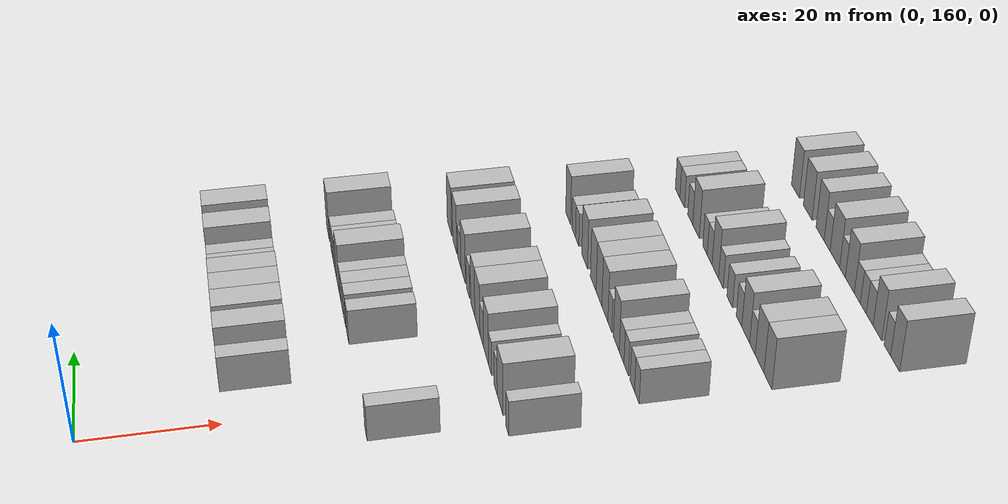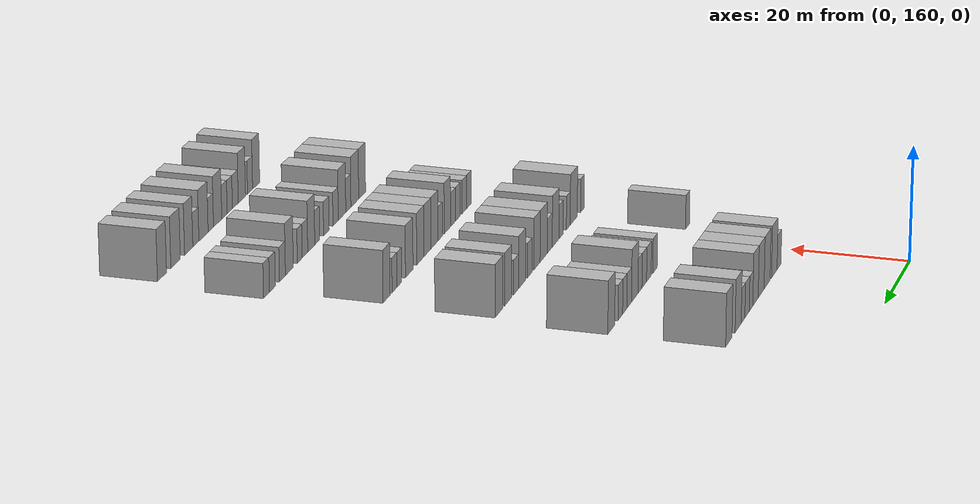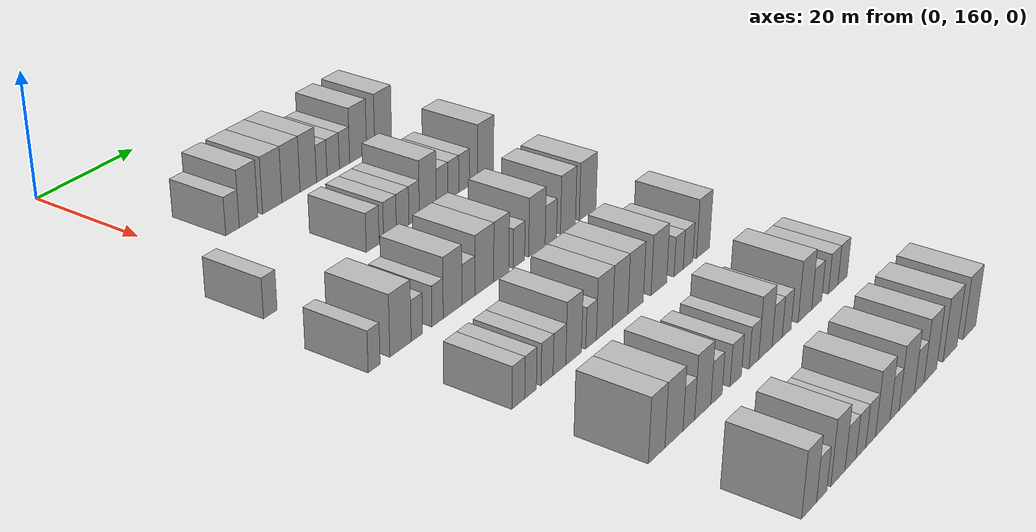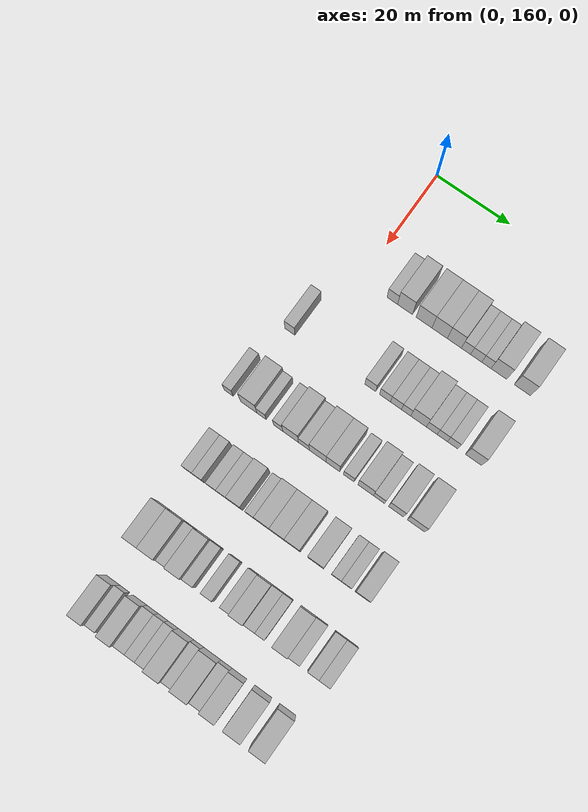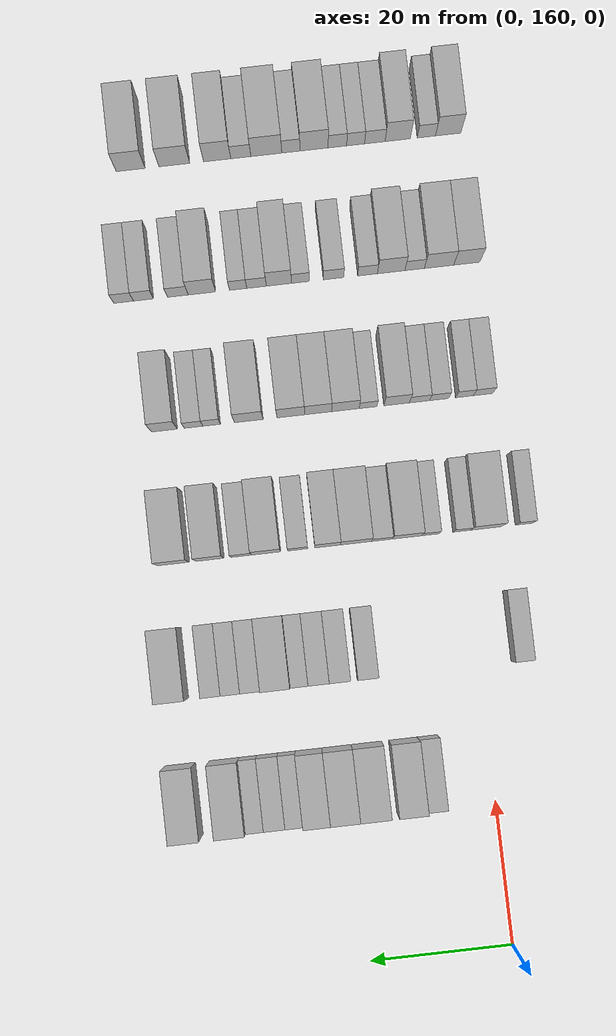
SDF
<sdf version="1.6">
 <world name="default">
  <model name="building_111">
   <static>1</static>
   <pose>25.0000 168.4954 0 0.000000 0.000000 0.000000</pose>
   <link name="link">
    <pose>0 0 3.00 0 0 0</pose>
    <collision name="collision"><geometry><box><size>10.0000 2.8664 6.0000</size></box></geometry></collision>
    <visual name="visual">
     <cast_shadows>0</cast_shadows>
     <geometry><box><size>10.0000 2.8664 6.0000</size></box></geometry>
     <material>
      <script>
       <uri>model://HANNAS_wall/materials/scripts</uri>
       <uri>model://HANNAS_wall/materials/textures</uri>
       <name>vrc/HANNAS_wall</name>
      </script>
     </material>
    </visual>
   </link>
  </model>
  <model name="building_112">
   <static>1</static>
   <pose>25.0000 171.9371 0 0.000000 0.000000 0.000000</pose>
   <link name="link">
    <pose>0 0 4.50 0 0 0</pose>
    <collision name="collision"><geometry><box><size>10.0000 4.0170 9.0000</size></box></geometry></collision>
    <visual name="visual">
     <cast_shadows>0</cast_shadows>
     <geometry><box><size>10.0000 4.0170 9.0000</size></box></geometry>
     <material>
      <script>
       <uri>model://HANNAS_wall/materials/scripts</uri>
       <uri>model://HANNAS_wall/materials/textures</uri>
       <name>vrc/HANNAS_wall</name>
      </script>
     </material>
    </visual>
   </link>
  </model>
  <model name="building_113">
   <static>1</static>
   <pose>25.0000 177.0812 0 0.000000 0.000000 0.000000</pose>
   <link name="link">
    <pose>0 0 4.50 0 0 0</pose>
    <collision name="collision"><geometry><box><size>10.0000 4.2713 9.0000</size></box></geometry></collision>
    <visual name="visual">
     <cast_shadows>0</cast_shadows>
     <geometry><box><size>10.0000 4.2713 9.0000</size></box></geometry>
     <material>
      <script>
       <uri>model://HANNAS_wall/materials/scripts</uri>
       <uri>model://HANNAS_wall/materials/textures</uri>
       <name>vrc/HANNAS_wall</name>
      </script>
     </material>
    </visual>
   </link>
  </model>
  <model name="building_114">
   <static>1</static>
   <pose>25.0000 181.2663 0 0.000000 0.000000 0.000000</pose>
   <link name="link">
    <pose>0 0 4.50 0 0 0</pose>
    <collision name="collision"><geometry><box><size>10.0000 4.0989 9.0000</size></box></geometry></collision>
    <visual name="visual">
     <cast_shadows>0</cast_shadows>
     <geometry><box><size>10.0000 4.0989 9.0000</size></box></geometry>
     <material>
      <script>
       <uri>model://HANNAS_wall/materials/scripts</uri>
       <uri>model://HANNAS_wall/materials/textures</uri>
       <name>vrc/HANNAS_wall</name>
      </script>
     </material>
    </visual>
   </link>
  </model>
  <model name="building_115">
   <static>1</static>
   <pose>25.0000 185.1970 0 0.000000 0.000000 0.000000</pose>
   <link name="link">
    <pose>0 0 4.50 0 0 0</pose>
    <collision name="collision"><geometry><box><size>10.0000 3.7625 9.0000</size></box></geometry></collision>
    <visual name="visual">
     <cast_shadows>0</cast_shadows>
     <geometry><box><size>10.0000 3.7625 9.0000</size></box></geometry>
     <material>
      <script>
       <uri>model://HANNAS_wall/materials/scripts</uri>
       <uri>model://HANNAS_wall/materials/textures</uri>
       <name>vrc/HANNAS_wall</name>
      </script>
     </material>
    </visual>
   </link>
  </model>
  <model name="building_116">
   <static>1</static>
   <pose>25.0000 188.3141 0 0.000000 0.000000 0.000000</pose>
   <link name="link">
    <pose>0 0 3.00 0 0 0</pose>
    <collision name="collision"><geometry><box><size>10.0000 2.4717 6.0000</size></box></geometry></collision>
    <visual name="visual">
     <cast_shadows>0</cast_shadows>
     <geometry><box><size>10.0000 2.4717 6.0000</size></box></geometry>
     <material>
      <script>
       <uri>model://HANNAS_wall/materials/scripts</uri>
       <uri>model://HANNAS_wall/materials/textures</uri>
       <name>vrc/HANNAS_wall</name>
      </script>
     </material>
    </visual>
   </link>
  </model>
  <model name="building_117">
   <static>1</static>
   <pose>25.0000 191.0302 0 0.000000 0.000000 0.000000</pose>
   <link name="link">
    <pose>0 0 3.00 0 0 0</pose>
    <collision name="collision"><geometry><box><size>10.0000 2.9605 6.0000</size></box></geometry></collision>
    <visual name="visual">
     <cast_shadows>0</cast_shadows>
     <geometry><box><size>10.0000 2.9605 6.0000</size></box></geometry>
     <material>
      <script>
       <uri>model://HANNAS_wall/materials/scripts</uri>
       <uri>model://HANNAS_wall/materials/textures</uri>
       <name>vrc/HANNAS_wall</name>
      </script>
     </material>
    </visual>
   </link>
  </model>
  <model name="building_118">
   <static>1</static>
   <pose>25.0000 193.7471 0 0.000000 0.000000 0.000000</pose>
   <link name="link">
    <pose>0 0 3.00 0 0 0</pose>
    <collision name="collision"><geometry><box><size>10.0000 2.4732 6.0000</size></box></geometry></collision>
    <visual name="visual">
     <cast_shadows>0</cast_shadows>
     <geometry><box><size>10.0000 2.4732 6.0000</size></box></geometry>
     <material>
      <script>
       <uri>model://HANNAS_wall/materials/scripts</uri>
       <uri>model://HANNAS_wall/materials/textures</uri>
       <name>vrc/HANNAS_wall</name>
      </script>
     </material>
    </visual>
   </link>
  </model>
  <model name="building_119">
   <static>1</static>
   <pose>25.0000 197.0703 0 0.000000 0.000000 0.000000</pose>
   <link name="link">
    <pose>0 0 4.50 0 0 0</pose>
    <collision name="collision"><geometry><box><size>10.0000 4.1732 9.0000</size></box></geometry></collision>
    <visual name="visual">
     <cast_shadows>0</cast_shadows>
     <geometry><box><size>10.0000 4.1732 9.0000</size></box></geometry>
     <material>
      <script>
       <uri>model://HANNAS_wall/materials/scripts</uri>
       <uri>model://HANNAS_wall/materials/textures</uri>
       <name>vrc/HANNAS_wall</name>
      </script>
     </material>
    </visual>
   </link>
  </model>
  <model name="building_120">
   <static>1</static>
   <pose>25.0000 203.2840 0 0.000000 0.000000 0.000000</pose>
   <link name="link">
    <pose>0 0 4.50 0 0 0</pose>
    <collision name="collision"><geometry><box><size>10.0000 4.2541 9.0000</size></box></geometry></collision>
    <visual name="visual">
     <cast_shadows>0</cast_shadows>
     <geometry><box><size>10.0000 4.2541 9.0000</size></box></geometry>
     <material>
      <script>
       <uri>model://HANNAS_wall/materials/scripts</uri>
       <uri>model://HANNAS_wall/materials/textures</uri>
       <name>vrc/HANNAS_wall</name>
      </script>
     </material>
    </visual>
   </link>
  </model>
  <model name="building_281">
   <static>1</static>
   <pose>44.0000 154.1554 0 0.000000 0.000000 0.000000</pose>
   <link name="link">
    <pose>0 0 3.00 0 0 0</pose>
    <collision name="collision"><geometry><box><size>10.0000 2.7231 6.0000</size></box></geometry></collision>
    <visual name="visual">
     <cast_shadows>0</cast_shadows>
     <geometry><box><size>10.0000 2.7231 6.0000</size></box></geometry>
     <material>
      <script>
       <uri>model://HANNAS_wall/materials/scripts</uri>
       <uri>model://HANNAS_wall/materials/textures</uri>
       <name>vrc/HANNAS_wall</name>
      </script>
     </material>
    </visual>
   </link>
  </model>
  <model name="building_282">
   <static>1</static>
   <pose>44.0000 175.8776 0 0.000000 0.000000 0.000000</pose>
   <link name="link">
    <pose>0 0 3.00 0 0 0</pose>
    <collision name="collision"><geometry><box><size>10.0000 2.9071 6.0000</size></box></geometry></collision>
    <visual name="visual">
     <cast_shadows>0</cast_shadows>
     <geometry><box><size>10.0000 2.9071 6.0000</size></box></geometry>
     <material>
      <script>
       <uri>model://HANNAS_wall/materials/scripts</uri>
       <uri>model://HANNAS_wall/materials/textures</uri>
       <name>vrc/HANNAS_wall</name>
      </script>
     </material>
    </visual>
   </link>
  </model>
  <model name="building_283">
   <static>1</static>
   <pose>44.0000 179.8139 0 0.000000 0.000000 0.000000</pose>
   <link name="link">
    <pose>0 0 3.00 0 0 0</pose>
    <collision name="collision"><geometry><box><size>10.0000 2.9655 6.0000</size></box></geometry></collision>
    <visual name="visual">
     <cast_shadows>0</cast_shadows>
     <geometry><box><size>10.0000 2.9655 6.0000</size></box></geometry>
     <material>
      <script>
       <uri>model://HANNAS_wall/materials/scripts</uri>
       <uri>model://HANNAS_wall/materials/textures</uri>
       <name>vrc/HANNAS_wall</name>
      </script>
     </material>
    </visual>
   </link>
  </model>
  <model name="building_284">
   <static>1</static>
   <pose>44.0000 182.7683 0 0.000000 0.000000 0.000000</pose>
   <link name="link">
    <pose>0 0 3.00 0 0 0</pose>
    <collision name="collision"><geometry><box><size>10.0000 2.9431 6.0000</size></box></geometry></collision>
    <visual name="visual">
     <cast_shadows>0</cast_shadows>
     <geometry><box><size>10.0000 2.9431 6.0000</size></box></geometry>
     <material>
      <script>
       <uri>model://HANNAS_wall/materials/scripts</uri>
       <uri>model://HANNAS_wall/materials/textures</uri>
       <name>vrc/HANNAS_wall</name>
      </script>
     </material>
    </visual>
   </link>
  </model>
  <model name="building_285">
   <static>1</static>
   <pose>44.0000 185.4722 0 0.000000 0.000000 0.000000</pose>
   <link name="link">
    <pose>0 0 3.00 0 0 0</pose>
    <collision name="collision"><geometry><box><size>10.0000 2.4646 6.0000</size></box></geometry></collision>
    <visual name="visual">
     <cast_shadows>0</cast_shadows>
     <geometry><box><size>10.0000 2.4646 6.0000</size></box></geometry>
     <material>
      <script>
       <uri>model://HANNAS_wall/materials/scripts</uri>
       <uri>model://HANNAS_wall/materials/textures</uri>
       <name>vrc/HANNAS_wall</name>
      </script>
     </material>
    </visual>
   </link>
  </model>
  <model name="building_286">
   <static>1</static>
   <pose>44.0000 188.7507 0 0.000000 0.000000 0.000000</pose>
   <link name="link">
    <pose>0 0 4.50 0 0 0</pose>
    <collision name="collision"><geometry><box><size>10.0000 4.0924 9.0000</size></box></geometry></collision>
    <visual name="visual">
     <cast_shadows>0</cast_shadows>
     <geometry><box><size>10.0000 4.0924 9.0000</size></box></geometry>
     <material>
      <script>
       <uri>model://HANNAS_wall/materials/scripts</uri>
       <uri>model://HANNAS_wall/materials/textures</uri>
       <name>vrc/HANNAS_wall</name>
      </script>
     </material>
    </visual>
   </link>
  </model>
  <model name="building_287">
   <static>1</static>
   <pose>44.0000 192.2342 0 0.000000 0.000000 0.000000</pose>
   <link name="link">
    <pose>0 0 3.00 0 0 0</pose>
    <collision name="collision"><geometry><box><size>10.0000 2.8747 6.0000</size></box></geometry></collision>
    <visual name="visual">
     <cast_shadows>0</cast_shadows>
     <geometry><box><size>10.0000 2.8747 6.0000</size></box></geometry>
     <material>
      <script>
       <uri>model://HANNAS_wall/materials/scripts</uri>
       <uri>model://HANNAS_wall/materials/textures</uri>
       <name>vrc/HANNAS_wall</name>
      </script>
     </material>
    </visual>
   </link>
  </model>
  <model name="building_288">
   <static>1</static>
   <pose>44.0000 195.0173 0 0.000000 0.000000 0.000000</pose>
   <link name="link">
    <pose>0 0 3.00 0 0 0</pose>
    <collision name="collision"><geometry><box><size>10.0000 2.6915 6.0000</size></box></geometry></collision>
    <visual name="visual">
     <cast_shadows>0</cast_shadows>
     <geometry><box><size>10.0000 2.6915 6.0000</size></box></geometry>
     <material>
      <script>
       <uri>model://HANNAS_wall/materials/scripts</uri>
       <uri>model://HANNAS_wall/materials/textures</uri>
       <name>vrc/HANNAS_wall</name>
      </script>
     </material>
    </visual>
   </link>
  </model>
  <model name="building_289">
   <static>1</static>
   <pose>44.0000 197.7573 0 0.000000 0.000000 0.000000</pose>
   <link name="link">
    <pose>0 0 3.00 0 0 0</pose>
    <collision name="collision"><geometry><box><size>10.0000 2.7883 6.0000</size></box></geometry></collision>
    <visual name="visual">
     <cast_shadows>0</cast_shadows>
     <geometry><box><size>10.0000 2.7883 6.0000</size></box></geometry>
     <material>
      <script>
       <uri>model://HANNAS_wall/materials/scripts</uri>
       <uri>model://HANNAS_wall/materials/textures</uri>
       <name>vrc/HANNAS_wall</name>
      </script>
     </material>
    </visual>
   </link>
  </model>
  <model name="building_290">
   <static>1</static>
   <pose>44.0000 203.2561 0 0.000000 0.000000 0.000000</pose>
   <link name="link">
    <pose>0 0 4.50 0 0 0</pose>
    <collision name="collision"><geometry><box><size>10.0000 4.2092 9.0000</size></box></geometry></collision>
    <visual name="visual">
     <cast_shadows>0</cast_shadows>
     <geometry><box><size>10.0000 4.2092 9.0000</size></box></geometry>
     <material>
      <script>
       <uri>model://HANNAS_wall/materials/scripts</uri>
       <uri>model://HANNAS_wall/materials/textures</uri>
       <name>vrc/HANNAS_wall</name>
      </script>
     </material>
    </visual>
   </link>
  </model>
  <model name="building_446">
   <static>1</static>
   <pose>63.0000 151.4069 0 0.000000 0.000000 0.000000</pose>
   <link name="link">
    <pose>0 0 3.00 0 0 0</pose>
    <collision name="collision"><geometry><box><size>10.0000 2.4189 6.0000</size></box></geometry></collision>
    <visual name="visual">
     <cast_shadows>0</cast_shadows>
     <geometry><box><size>10.0000 2.4189 6.0000</size></box></geometry>
     <material>
      <script>
       <uri>model://HANNAS_wall/materials/scripts</uri>
       <uri>model://HANNAS_wall/materials/textures</uri>
       <name>vrc/HANNAS_wall</name>
      </script>
     </material>
    </visual>
   </link>
  </model>
  <model name="building_447">
   <static>1</static>
   <pose>63.0000 156.8374 0 0.000000 0.000000 0.000000</pose>
   <link name="link">
    <pose>0 0 4.50 0 0 0</pose>
    <collision name="collision"><geometry><box><size>10.0000 4.4422 9.0000</size></box></geometry></collision>
    <visual name="visual">
     <cast_shadows>0</cast_shadows>
     <geometry><box><size>10.0000 4.4422 9.0000</size></box></geometry>
     <material>
      <script>
       <uri>model://HANNAS_wall/materials/scripts</uri>
       <uri>model://HANNAS_wall/materials/textures</uri>
       <name>vrc/HANNAS_wall</name>
      </script>
     </material>
    </visual>
   </link>
  </model>
  <model name="building_448">
   <static>1</static>
   <pose>63.0000 160.2838 0 0.000000 0.000000 0.000000</pose>
   <link name="link">
    <pose>0 0 3.00 0 0 0</pose>
    <collision name="collision"><geometry><box><size>10.0000 2.4506 6.0000</size></box></geometry></collision>
    <visual name="visual">
     <cast_shadows>0</cast_shadows>
     <geometry><box><size>10.0000 2.4506 6.0000</size></box></geometry>
     <material>
      <script>
       <uri>model://HANNAS_wall/materials/scripts</uri>
       <uri>model://HANNAS_wall/materials/textures</uri>
       <name>vrc/HANNAS_wall</name>
      </script>
     </material>
    </visual>
   </link>
  </model>
  <model name="building_449">
   <static>1</static>
   <pose>63.0000 164.7554 0 0.000000 0.000000 0.000000</pose>
   <link name="link">
    <pose>0 0 3.00 0 0 0</pose>
    <collision name="collision"><geometry><box><size>10.0000 2.4926 6.0000</size></box></geometry></collision>
    <visual name="visual">
     <cast_shadows>0</cast_shadows>
     <geometry><box><size>10.0000 2.4926 6.0000</size></box></geometry>
     <material>
      <script>
       <uri>model://HANNAS_wall/materials/scripts</uri>
       <uri>model://HANNAS_wall/materials/textures</uri>
       <name>vrc/HANNAS_wall</name>
      </script>
     </material>
    </visual>
   </link>
  </model>
  <model name="building_450">
   <static>1</static>
   <pose>63.0000 168.0867 0 0.000000 0.000000 0.000000</pose>
   <link name="link">
    <pose>0 0 4.50 0 0 0</pose>
    <collision name="collision"><geometry><box><size>10.0000 4.1700 9.0000</size></box></geometry></collision>
    <visual name="visual">
     <cast_shadows>0</cast_shadows>
     <geometry><box><size>10.0000 4.1700 9.0000</size></box></geometry>
     <material>
      <script>
       <uri>model://HANNAS_wall/materials/scripts</uri>
       <uri>model://HANNAS_wall/materials/textures</uri>
       <name>vrc/HANNAS_wall</name>
      </script>
     </material>
    </visual>
   </link>
  </model>
  <model name="building_451">
   <static>1</static>
   <pose>63.0000 171.6398 0 0.000000 0.000000 0.000000</pose>
   <link name="link">
    <pose>0 0 3.00 0 0 0</pose>
    <collision name="collision"><geometry><box><size>10.0000 2.9362 6.0000</size></box></geometry></collision>
    <visual name="visual">
     <cast_shadows>0</cast_shadows>
     <geometry><box><size>10.0000 2.9362 6.0000</size></box></geometry>
     <material>
      <script>
       <uri>model://HANNAS_wall/materials/scripts</uri>
       <uri>model://HANNAS_wall/materials/textures</uri>
       <name>vrc/HANNAS_wall</name>
      </script>
     </material>
    </visual>
   </link>
  </model>
  <model name="building_452">
   <static>1</static>
   <pose>63.0000 175.3131 0 0.000000 0.000000 0.000000</pose>
   <link name="link">
    <pose>0 0 4.50 0 0 0</pose>
    <collision name="collision"><geometry><box><size>10.0000 4.4104 9.0000</size></box></geometry></collision>
    <visual name="visual">
     <cast_shadows>0</cast_shadows>
     <geometry><box><size>10.0000 4.4104 9.0000</size></box></geometry>
     <material>
      <script>
       <uri>model://HANNAS_wall/materials/scripts</uri>
       <uri>model://HANNAS_wall/materials/textures</uri>
       <name>vrc/HANNAS_wall</name>
      </script>
     </material>
    </visual>
   </link>
  </model>
  <model name="building_453">
   <static>1</static>
   <pose>63.0000 179.3372 0 0.000000 0.000000 0.000000</pose>
   <link name="link">
    <pose>0 0 4.50 0 0 0</pose>
    <collision name="collision"><geometry><box><size>10.0000 3.6378 9.0000</size></box></geometry></collision>
    <visual name="visual">
     <cast_shadows>0</cast_shadows>
     <geometry><box><size>10.0000 3.6378 9.0000</size></box></geometry>
     <material>
      <script>
       <uri>model://HANNAS_wall/materials/scripts</uri>
       <uri>model://HANNAS_wall/materials/textures</uri>
       <name>vrc/HANNAS_wall</name>
      </script>
     </material>
    </visual>
   </link>
  </model>
  <model name="building_454">
   <static>1</static>
   <pose>63.0000 183.5707 0 0.000000 0.000000 0.000000</pose>
   <link name="link">
    <pose>0 0 3.00 0 0 0</pose>
    <collision name="collision"><geometry><box><size>10.0000 2.8292 6.0000</size></box></geometry></collision>
    <visual name="visual">
     <cast_shadows>0</cast_shadows>
     <geometry><box><size>10.0000 2.8292 6.0000</size></box></geometry>
     <material>
      <script>
       <uri>model://HANNAS_wall/materials/scripts</uri>
       <uri>model://HANNAS_wall/materials/textures</uri>
       <name>vrc/HANNAS_wall</name>
      </script>
     </material>
    </visual>
   </link>
  </model>
  <model name="building_455">
   <static>1</static>
   <pose>63.0000 188.0411 0 0.000000 0.000000 0.000000</pose>
   <link name="link">
    <pose>0 0 4.50 0 0 0</pose>
    <collision name="collision"><geometry><box><size>10.0000 4.1114 9.0000</size></box></geometry></collision>
    <visual name="visual">
     <cast_shadows>0</cast_shadows>
     <geometry><box><size>10.0000 4.1114 9.0000</size></box></geometry>
     <material>
      <script>
       <uri>model://HANNAS_wall/materials/scripts</uri>
       <uri>model://HANNAS_wall/materials/textures</uri>
       <name>vrc/HANNAS_wall</name>
      </script>
     </material>
    </visual>
   </link>
  </model>
  <model name="building_456">
   <static>1</static>
   <pose>63.0000 191.5636 0 0.000000 0.000000 0.000000</pose>
   <link name="link">
    <pose>0 0 3.00 0 0 0</pose>
    <collision name="collision"><geometry><box><size>10.0000 2.9335 6.0000</size></box></geometry></collision>
    <visual name="visual">
     <cast_shadows>0</cast_shadows>
     <geometry><box><size>10.0000 2.9335 6.0000</size></box></geometry>
     <material>
      <script>
       <uri>model://HANNAS_wall/materials/scripts</uri>
       <uri>model://HANNAS_wall/materials/textures</uri>
       <name>vrc/HANNAS_wall</name>
      </script>
     </material>
    </visual>
   </link>
  </model>
  <model name="building_457">
   <static>1</static>
   <pose>63.0000 195.9955 0 0.000000 0.000000 0.000000</pose>
   <link name="link">
    <pose>0 0 4.50 0 0 0</pose>
    <collision name="collision"><geometry><box><size>10.0000 3.9304 9.0000</size></box></geometry></collision>
    <visual name="visual">
     <cast_shadows>0</cast_shadows>
     <geometry><box><size>10.0000 3.9304 9.0000</size></box></geometry>
     <material>
      <script>
       <uri>model://HANNAS_wall/materials/scripts</uri>
       <uri>model://HANNAS_wall/materials/textures</uri>
       <name>vrc/HANNAS_wall</name>
      </script>
     </material>
    </visual>
   </link>
  </model>
  <model name="building_458">
   <static>1</static>
   <pose>63.0000 201.2059 0 0.000000 0.000000 0.000000</pose>
   <link name="link">
    <pose>0 0 4.50 0 0 0</pose>
    <collision name="collision"><geometry><box><size>10.0000 4.4904 9.0000</size></box></geometry></collision>
    <visual name="visual">
     <cast_shadows>0</cast_shadows>
     <geometry><box><size>10.0000 4.4904 9.0000</size></box></geometry>
     <material>
      <script>
       <uri>model://HANNAS_wall/materials/scripts</uri>
       <uri>model://HANNAS_wall/materials/textures</uri>
       <name>vrc/HANNAS_wall</name>
      </script>
     </material>
    </visual>
   </link>
  </model>
  <model name="building_627">
   <static>1</static>
   <pose>82.0000 154.9109 0 0.000000 0.000000 0.000000</pose>
   <link name="link">
    <pose>0 0 3.00 0 0 0</pose>
    <collision name="collision"><geometry><box><size>10.0000 2.7775 6.0000</size></box></geometry></collision>
    <visual name="visual">
     <cast_shadows>0</cast_shadows>
     <geometry><box><size>10.0000 2.7775 6.0000</size></box></geometry>
     <material>
      <script>
       <uri>model://HANNAS_wall/materials/scripts</uri>
       <uri>model://HANNAS_wall/materials/textures</uri>
       <name>vrc/HANNAS_wall</name>
      </script>
     </material>
    </visual>
   </link>
  </model>
  <model name="building_628">
   <static>1</static>
   <pose>82.0000 157.5748 0 0.000000 0.000000 0.000000</pose>
   <link name="link">
    <pose>0 0 3.00 0 0 0</pose>
    <collision name="collision"><geometry><box><size>10.0000 2.5502 6.0000</size></box></geometry></collision>
    <visual name="visual">
     <cast_shadows>0</cast_shadows>
     <geometry><box><size>10.0000 2.5502 6.0000</size></box></geometry>
     <material>
      <script>
       <uri>model://HANNAS_wall/materials/scripts</uri>
       <uri>model://HANNAS_wall/materials/textures</uri>
       <name>vrc/HANNAS_wall</name>
      </script>
     </material>
    </visual>
   </link>
  </model>
  <model name="building_629">
   <static>1</static>
   <pose>82.0000 161.2133 0 0.000000 0.000000 0.000000</pose>
   <link name="link">
    <pose>0 0 3.00 0 0 0</pose>
    <collision name="collision"><geometry><box><size>10.0000 2.7268 6.0000</size></box></geometry></collision>
    <visual name="visual">
     <cast_shadows>0</cast_shadows>
     <geometry><box><size>10.0000 2.7268 6.0000</size></box></geometry>
     <material>
      <script>
       <uri>model://HANNAS_wall/materials/scripts</uri>
       <uri>model://HANNAS_wall/materials/textures</uri>
       <name>vrc/HANNAS_wall</name>
      </script>
     </material>
    </visual>
   </link>
  </model>
  <model name="building_630">
   <static>1</static>
   <pose>82.0000 164.0237 0 0.000000 0.000000 0.000000</pose>
   <link name="link">
    <pose>0 0 3.00 0 0 0</pose>
    <collision name="collision"><geometry><box><size>10.0000 2.8940 6.0000</size></box></geometry></collision>
    <visual name="visual">
     <cast_shadows>0</cast_shadows>
     <geometry><box><size>10.0000 2.8940 6.0000</size></box></geometry>
     <material>
      <script>
       <uri>model://HANNAS_wall/materials/scripts</uri>
       <uri>model://HANNAS_wall/materials/textures</uri>
       <name>vrc/HANNAS_wall</name>
      </script>
     </material>
    </visual>
   </link>
  </model>
  <model name="building_631">
   <static>1</static>
   <pose>82.0000 167.2958 0 0.000000 0.000000 0.000000</pose>
   <link name="link">
    <pose>0 0 4.50 0 0 0</pose>
    <collision name="collision"><geometry><box><size>10.0000 3.6504 9.0000</size></box></geometry></collision>
    <visual name="visual">
     <cast_shadows>0</cast_shadows>
     <geometry><box><size>10.0000 3.6504 9.0000</size></box></geometry>
     <material>
      <script>
       <uri>model://HANNAS_wall/materials/scripts</uri>
       <uri>model://HANNAS_wall/materials/textures</uri>
       <name>vrc/HANNAS_wall</name>
      </script>
     </material>
    </visual>
   </link>
  </model>
  <model name="building_632">
   <static>1</static>
   <pose>82.0000 171.3891 0 0.000000 0.000000 0.000000</pose>
   <link name="link">
    <pose>0 0 3.00 0 0 0</pose>
    <collision name="collision"><geometry><box><size>10.0000 2.5361 6.0000</size></box></geometry></collision>
    <visual name="visual">
     <cast_shadows>0</cast_shadows>
     <geometry><box><size>10.0000 2.5361 6.0000</size></box></geometry>
     <material>
      <script>
       <uri>model://HANNAS_wall/materials/scripts</uri>
       <uri>model://HANNAS_wall/materials/textures</uri>
       <name>vrc/HANNAS_wall</name>
      </script>
     </material>
    </visual>
   </link>
  </model>
  <model name="building_633">
   <static>1</static>
   <pose>82.0000 174.6296 0 0.000000 0.000000 0.000000</pose>
   <link name="link">
    <pose>0 0 4.50 0 0 0</pose>
    <collision name="collision"><geometry><box><size>10.0000 3.9450 9.0000</size></box></geometry></collision>
    <visual name="visual">
     <cast_shadows>0</cast_shadows>
     <geometry><box><size>10.0000 3.9450 9.0000</size></box></geometry>
     <material>
      <script>
       <uri>model://HANNAS_wall/materials/scripts</uri>
       <uri>model://HANNAS_wall/materials/textures</uri>
       <name>vrc/HANNAS_wall</name>
      </script>
     </material>
    </visual>
   </link>
  </model>
  <model name="building_634">
   <static>1</static>
   <pose>82.0000 178.5152 0 0.000000 0.000000 0.000000</pose>
   <link name="link">
    <pose>0 0 4.50 0 0 0</pose>
    <collision name="collision"><geometry><box><size>10.0000 3.8263 9.0000</size></box></geometry></collision>
    <visual name="visual">
     <cast_shadows>0</cast_shadows>
     <geometry><box><size>10.0000 3.8263 9.0000</size></box></geometry>
     <material>
      <script>
       <uri>model://HANNAS_wall/materials/scripts</uri>
       <uri>model://HANNAS_wall/materials/textures</uri>
       <name>vrc/HANNAS_wall</name>
      </script>
     </material>
    </visual>
   </link>
  </model>
  <model name="building_635">
   <static>1</static>
   <pose>82.0000 182.4036 0 0.000000 0.000000 0.000000</pose>
   <link name="link">
    <pose>0 0 4.50 0 0 0</pose>
    <collision name="collision"><geometry><box><size>10.0000 3.9503 9.0000</size></box></geometry></collision>
    <visual name="visual">
     <cast_shadows>0</cast_shadows>
     <geometry><box><size>10.0000 3.9503 9.0000</size></box></geometry>
     <material>
      <script>
       <uri>model://HANNAS_wall/materials/scripts</uri>
       <uri>model://HANNAS_wall/materials/textures</uri>
       <name>vrc/HANNAS_wall</name>
      </script>
     </material>
    </visual>
   </link>
  </model>
  <model name="building_636">
   <static>1</static>
   <pose>82.0000 188.4313 0 0.000000 0.000000 0.000000</pose>
   <link name="link">
    <pose>0 0 4.50 0 0 0</pose>
    <collision name="collision"><geometry><box><size>10.0000 4.1052 9.0000</size></box></geometry></collision>
    <visual name="visual">
     <cast_shadows>0</cast_shadows>
     <geometry><box><size>10.0000 4.1052 9.0000</size></box></geometry>
     <material>
      <script>
       <uri>model://HANNAS_wall/materials/scripts</uri>
       <uri>model://HANNAS_wall/materials/textures</uri>
       <name>vrc/HANNAS_wall</name>
      </script>
     </material>
    </visual>
   </link>
  </model>
  <model name="building_637">
   <static>1</static>
   <pose>82.0000 193.7358 0 0.000000 0.000000 0.000000</pose>
   <link name="link">
    <pose>0 0 3.00 0 0 0</pose>
    <collision name="collision"><geometry><box><size>10.0000 2.5038 6.0000</size></box></geometry></collision>
    <visual name="visual">
     <cast_shadows>0</cast_shadows>
     <geometry><box><size>10.0000 2.5038 6.0000</size></box></geometry>
     <material>
      <script>
       <uri>model://HANNAS_wall/materials/scripts</uri>
       <uri>model://HANNAS_wall/materials/textures</uri>
       <name>vrc/HANNAS_wall</name>
      </script>
     </material>
    </visual>
   </link>
  </model>
  <model name="building_638">
   <static>1</static>
   <pose>82.0000 196.3099 0 0.000000 0.000000 0.000000</pose>
   <link name="link">
    <pose>0 0 3.00 0 0 0</pose>
    <collision name="collision"><geometry><box><size>10.0000 2.6445 6.0000</size></box></geometry></collision>
    <visual name="visual">
     <cast_shadows>0</cast_shadows>
     <geometry><box><size>10.0000 2.6445 6.0000</size></box></geometry>
     <material>
      <script>
       <uri>model://HANNAS_wall/materials/scripts</uri>
       <uri>model://HANNAS_wall/materials/textures</uri>
       <name>vrc/HANNAS_wall</name>
      </script>
     </material>
    </visual>
   </link>
  </model>
  <model name="building_639">
   <static>1</static>
   <pose>82.0000 200.4732 0 0.000000 0.000000 0.000000</pose>
   <link name="link">
    <pose>0 0 4.50 0 0 0</pose>
    <collision name="collision"><geometry><box><size>10.0000 3.6822 9.0000</size></box></geometry></collision>
    <visual name="visual">
     <cast_shadows>0</cast_shadows>
     <geometry><box><size>10.0000 3.6822 9.0000</size></box></geometry>
     <material>
      <script>
       <uri>model://HANNAS_wall/materials/scripts</uri>
       <uri>model://HANNAS_wall/materials/textures</uri>
       <name>vrc/HANNAS_wall</name>
      </script>
     </material>
    </visual>
   </link>
  </model>
  <model name="building_805">
   <static>1</static>
   <pose>101.0000 154.9642 0 0.000000 0.000000 0.000000</pose>
   <link name="link">
    <pose>0 0 4.50 0 0 0</pose>
    <collision name="collision"><geometry><box><size>10.0000 3.7755 9.0000</size></box></geometry></collision>
    <visual name="visual">
     <cast_shadows>0</cast_shadows>
     <geometry><box><size>10.0000 3.7755 9.0000</size></box></geometry>
     <material>
      <script>
       <uri>model://HANNAS_wall/materials/scripts</uri>
       <uri>model://HANNAS_wall/materials/textures</uri>
       <name>vrc/HANNAS_wall</name>
      </script>
     </material>
    </visual>
   </link>
  </model>
  <model name="building_806">
   <static>1</static>
   <pose>101.0000 158.9691 0 0.000000 0.000000 0.000000</pose>
   <link name="link">
    <pose>0 0 4.50 0 0 0</pose>
    <collision name="collision"><geometry><box><size>10.0000 4.2343 9.0000</size></box></geometry></collision>
    <visual name="visual">
     <cast_shadows>0</cast_shadows>
     <geometry><box><size>10.0000 4.2343 9.0000</size></box></geometry>
     <material>
      <script>
       <uri>model://HANNAS_wall/materials/scripts</uri>
       <uri>model://HANNAS_wall/materials/textures</uri>
       <name>vrc/HANNAS_wall</name>
      </script>
     </material>
    </visual>
   </link>
  </model>
  <model name="building_807">
   <static>1</static>
   <pose>101.0000 162.4762 0 0.000000 0.000000 0.000000</pose>
   <link name="link">
    <pose>0 0 3.00 0 0 0</pose>
    <collision name="collision"><geometry><box><size>10.0000 2.7799 6.0000</size></box></geometry></collision>
    <visual name="visual">
     <cast_shadows>0</cast_shadows>
     <geometry><box><size>10.0000 2.7799 6.0000</size></box></geometry>
     <material>
      <script>
       <uri>model://HANNAS_wall/materials/scripts</uri>
       <uri>model://HANNAS_wall/materials/textures</uri>
       <name>vrc/HANNAS_wall</name>
      </script>
     </material>
    </visual>
   </link>
  </model>
  <model name="building_808">
   <static>1</static>
   <pose>101.0000 165.8494 0 0.000000 0.000000 0.000000</pose>
   <link name="link">
    <pose>0 0 4.50 0 0 0</pose>
    <collision name="collision"><geometry><box><size>10.0000 3.9665 9.0000</size></box></geometry></collision>
    <visual name="visual">
     <cast_shadows>0</cast_shadows>
     <geometry><box><size>10.0000 3.9665 9.0000</size></box></geometry>
     <material>
      <script>
       <uri>model://HANNAS_wall/materials/scripts</uri>
       <uri>model://HANNAS_wall/materials/textures</uri>
       <name>vrc/HANNAS_wall</name>
      </script>
     </material>
    </visual>
   </link>
  </model>
  <model name="building_809">
   <static>1</static>
   <pose>101.0000 169.2505 0 0.000000 0.000000 0.000000</pose>
   <link name="link">
    <pose>0 0 3.00 0 0 0</pose>
    <collision name="collision"><geometry><box><size>10.0000 2.8358 6.0000</size></box></geometry></collision>
    <visual name="visual">
     <cast_shadows>0</cast_shadows>
     <geometry><box><size>10.0000 2.8358 6.0000</size></box></geometry>
     <material>
      <script>
       <uri>model://HANNAS_wall/materials/scripts</uri>
       <uri>model://HANNAS_wall/materials/textures</uri>
       <name>vrc/HANNAS_wall</name>
      </script>
     </material>
    </visual>
   </link>
  </model>
  <model name="building_810">
   <static>1</static>
   <pose>101.0000 174.1408 0 0.000000 0.000000 0.000000</pose>
   <link name="link">
    <pose>0 0 3.00 0 0 0</pose>
    <collision name="collision"><geometry><box><size>10.0000 2.9447 6.0000</size></box></geometry></collision>
    <visual name="visual">
     <cast_shadows>0</cast_shadows>
     <geometry><box><size>10.0000 2.9447 6.0000</size></box></geometry>
     <material>
      <script>
       <uri>model://HANNAS_wall/materials/scripts</uri>
       <uri>model://HANNAS_wall/materials/textures</uri>
       <name>vrc/HANNAS_wall</name>
      </script>
     </material>
    </visual>
   </link>
  </model>
  <model name="building_811">
   <static>1</static>
   <pose>101.0000 178.8955 0 0.000000 0.000000 0.000000</pose>
   <link name="link">
    <pose>0 0 3.00 0 0 0</pose>
    <collision name="collision"><geometry><box><size>10.0000 2.5647 6.0000</size></box></geometry></collision>
    <visual name="visual">
     <cast_shadows>0</cast_shadows>
     <geometry><box><size>10.0000 2.5647 6.0000</size></box></geometry>
     <material>
      <script>
       <uri>model://HANNAS_wall/materials/scripts</uri>
       <uri>model://HANNAS_wall/materials/textures</uri>
       <name>vrc/HANNAS_wall</name>
      </script>
     </material>
    </visual>
   </link>
  </model>
  <model name="building_812">
   <static>1</static>
   <pose>101.0000 181.9885 0 0.000000 0.000000 0.000000</pose>
   <link name="link">
    <pose>0 0 4.50 0 0 0</pose>
    <collision name="collision"><geometry><box><size>10.0000 3.6213 9.0000</size></box></geometry></collision>
    <visual name="visual">
     <cast_shadows>0</cast_shadows>
     <geometry><box><size>10.0000 3.6213 9.0000</size></box></geometry>
     <material>
      <script>
       <uri>model://HANNAS_wall/materials/scripts</uri>
       <uri>model://HANNAS_wall/materials/textures</uri>
       <name>vrc/HANNAS_wall</name>
      </script>
     </material>
    </visual>
   </link>
  </model>
  <model name="building_813">
   <static>1</static>
   <pose>101.0000 185.2048 0 0.000000 0.000000 0.000000</pose>
   <link name="link">
    <pose>0 0 3.00 0 0 0</pose>
    <collision name="collision"><geometry><box><size>10.0000 2.8113 6.0000</size></box></geometry></collision>
    <visual name="visual">
     <cast_shadows>0</cast_shadows>
     <geometry><box><size>10.0000 2.8113 6.0000</size></box></geometry>
     <material>
      <script>
       <uri>model://HANNAS_wall/materials/scripts</uri>
       <uri>model://HANNAS_wall/materials/textures</uri>
       <name>vrc/HANNAS_wall</name>
      </script>
     </material>
    </visual>
   </link>
  </model>
  <model name="building_814">
   <static>1</static>
   <pose>101.0000 187.8530 0 0.000000 0.000000 0.000000</pose>
   <link name="link">
    <pose>0 0 3.00 0 0 0</pose>
    <collision name="collision"><geometry><box><size>10.0000 2.4851 6.0000</size></box></geometry></collision>
    <visual name="visual">
     <cast_shadows>0</cast_shadows>
     <geometry><box><size>10.0000 2.4851 6.0000</size></box></geometry>
     <material>
      <script>
       <uri>model://HANNAS_wall/materials/scripts</uri>
       <uri>model://HANNAS_wall/materials/textures</uri>
       <name>vrc/HANNAS_wall</name>
      </script>
     </material>
    </visual>
   </link>
  </model>
  <model name="building_815">
   <static>1</static>
   <pose>101.0000 193.0638 0 0.000000 0.000000 0.000000</pose>
   <link name="link">
    <pose>0 0 4.50 0 0 0</pose>
    <collision name="collision"><geometry><box><size>10.0000 3.9366 9.0000</size></box></geometry></collision>
    <visual name="visual">
     <cast_shadows>0</cast_shadows>
     <geometry><box><size>10.0000 3.9366 9.0000</size></box></geometry>
     <material>
      <script>
       <uri>model://HANNAS_wall/materials/scripts</uri>
       <uri>model://HANNAS_wall/materials/textures</uri>
       <name>vrc/HANNAS_wall</name>
      </script>
     </material>
    </visual>
   </link>
  </model>
  <model name="building_816">
   <static>1</static>
   <pose>101.0000 196.5218 0 0.000000 0.000000 0.000000</pose>
   <link name="link">
    <pose>0 0 3.00 0 0 0</pose>
    <collision name="collision"><geometry><box><size>10.0000 2.9793 6.0000</size></box></geometry></collision>
    <visual name="visual">
     <cast_shadows>0</cast_shadows>
     <geometry><box><size>10.0000 2.9793 6.0000</size></box></geometry>
     <material>
      <script>
       <uri>model://HANNAS_wall/materials/scripts</uri>
       <uri>model://HANNAS_wall/materials/textures</uri>
       <name>vrc/HANNAS_wall</name>
      </script>
     </material>
    </visual>
   </link>
  </model>
  <model name="building_817">
   <static>1</static>
   <pose>101.0000 201.4535 0 0.000000 0.000000 0.000000</pose>
   <link name="link">
    <pose>0 0 3.00 0 0 0</pose>
    <collision name="collision"><geometry><box><size>10.0000 2.8841 6.0000</size></box></geometry></collision>
    <visual name="visual">
     <cast_shadows>0</cast_shadows>
     <geometry><box><size>10.0000 2.8841 6.0000</size></box></geometry>
     <material>
      <script>
       <uri>model://HANNAS_wall/materials/scripts</uri>
       <uri>model://HANNAS_wall/materials/textures</uri>
       <name>vrc/HANNAS_wall</name>
      </script>
     </material>
    </visual>
   </link>
  </model>
  <model name="building_818">
   <static>1</static>
   <pose>101.0000 204.3152 0 0.000000 0.000000 0.000000</pose>
   <link name="link">
    <pose>0 0 3.00 0 0 0</pose>
    <collision name="collision"><geometry><box><size>10.0000 2.8393 6.0000</size></box></geometry></collision>
    <visual name="visual">
     <cast_shadows>0</cast_shadows>
     <geometry><box><size>10.0000 2.8393 6.0000</size></box></geometry>
     <material>
      <script>
       <uri>model://HANNAS_wall/materials/scripts</uri>
       <uri>model://HANNAS_wall/materials/textures</uri>
       <name>vrc/HANNAS_wall</name>
      </script>
     </material>
    </visual>
   </link>
  </model>
  <model name="building_970">
   <static>1</static>
   <pose>120.0000 155.3846 0 0.000000 0.000000 0.000000</pose>
   <link name="link">
    <pose>0 0 4.50 0 0 0</pose>
    <collision name="collision"><geometry><box><size>10.0000 3.6749 9.0000</size></box></geometry></collision>
    <visual name="visual">
     <cast_shadows>0</cast_shadows>
     <geometry><box><size>10.0000 3.6749 9.0000</size></box></geometry>
     <material>
      <script>
       <uri>model://HANNAS_wall/materials/scripts</uri>
       <uri>model://HANNAS_wall/materials/textures</uri>
       <name>vrc/HANNAS_wall</name>
      </script>
     </material>
    </visual>
   </link>
  </model>
  <model name="building_971">
   <static>1</static>
   <pose>120.0000 158.5400 0 0.000000 0.000000 0.000000</pose>
   <link name="link">
    <pose>0 0 3.00 0 0 0</pose>
    <collision name="collision"><geometry><box><size>10.0000 2.6360 6.0000</size></box></geometry></collision>
    <visual name="visual">
     <cast_shadows>0</cast_shadows>
     <geometry><box><size>10.0000 2.6360 6.0000</size></box></geometry>
     <material>
      <script>
       <uri>model://HANNAS_wall/materials/scripts</uri>
       <uri>model://HANNAS_wall/materials/textures</uri>
       <name>vrc/HANNAS_wall</name>
      </script>
     </material>
    </visual>
   </link>
  </model>
  <model name="building_972">
   <static>1</static>
   <pose>120.0000 162.6868 0 0.000000 0.000000 0.000000</pose>
   <link name="link">
    <pose>0 0 4.50 0 0 0</pose>
    <collision name="collision"><geometry><box><size>10.0000 3.6575 9.0000</size></box></geometry></collision>
    <visual name="visual">
     <cast_shadows>0</cast_shadows>
     <geometry><box><size>10.0000 3.6575 9.0000</size></box></geometry>
     <material>
      <script>
       <uri>model://HANNAS_wall/materials/scripts</uri>
       <uri>model://HANNAS_wall/materials/textures</uri>
       <name>vrc/HANNAS_wall</name>
      </script>
     </material>
    </visual>
   </link>
  </model>
  <model name="building_973">
   <static>1</static>
   <pose>120.0000 165.9928 0 0.000000 0.000000 0.000000</pose>
   <link name="link">
    <pose>0 0 3.00 0 0 0</pose>
    <collision name="collision"><geometry><box><size>10.0000 2.9545 6.0000</size></box></geometry></collision>
    <visual name="visual">
     <cast_shadows>0</cast_shadows>
     <geometry><box><size>10.0000 2.9545 6.0000</size></box></geometry>
     <material>
      <script>
       <uri>model://HANNAS_wall/materials/scripts</uri>
       <uri>model://HANNAS_wall/materials/textures</uri>
       <name>vrc/HANNAS_wall</name>
      </script>
     </material>
    </visual>
   </link>
  </model>
  <model name="building_974">
   <static>1</static>
   <pose>120.0000 168.7717 0 0.000000 0.000000 0.000000</pose>
   <link name="link">
    <pose>0 0 3.00 0 0 0</pose>
    <collision name="collision"><geometry><box><size>10.0000 2.6033 6.0000</size></box></geometry></collision>
    <visual name="visual">
     <cast_shadows>0</cast_shadows>
     <geometry><box><size>10.0000 2.6033 6.0000</size></box></geometry>
     <material>
      <script>
       <uri>model://HANNAS_wall/materials/scripts</uri>
       <uri>model://HANNAS_wall/materials/textures</uri>
       <name>vrc/HANNAS_wall</name>
      </script>
     </material>
    </visual>
   </link>
  </model>
  <model name="building_975">
   <static>1</static>
   <pose>120.0000 171.4168 0 0.000000 0.000000 0.000000</pose>
   <link name="link">
    <pose>0 0 3.00 0 0 0</pose>
    <collision name="collision"><geometry><box><size>10.0000 2.6870 6.0000</size></box></geometry></collision>
    <visual name="visual">
     <cast_shadows>0</cast_shadows>
     <geometry><box><size>10.0000 2.6870 6.0000</size></box></geometry>
     <material>
      <script>
       <uri>model://HANNAS_wall/materials/scripts</uri>
       <uri>model://HANNAS_wall/materials/textures</uri>
       <name>vrc/HANNAS_wall</name>
      </script>
     </material>
    </visual>
   </link>
  </model>
  <model name="building_976">
   <static>1</static>
   <pose>120.0000 174.7921 0 0.000000 0.000000 0.000000</pose>
   <link name="link">
    <pose>0 0 4.50 0 0 0</pose>
    <collision name="collision"><geometry><box><size>10.0000 4.0636 9.0000</size></box></geometry></collision>
    <visual name="visual">
     <cast_shadows>0</cast_shadows>
     <geometry><box><size>10.0000 4.0636 9.0000</size></box></geometry>
     <material>
      <script>
       <uri>model://HANNAS_wall/materials/scripts</uri>
       <uri>model://HANNAS_wall/materials/textures</uri>
       <name>vrc/HANNAS_wall</name>
      </script>
     </material>
    </visual>
   </link>
  </model>
  <model name="building_977">
   <static>1</static>
   <pose>120.0000 178.1419 0 0.000000 0.000000 0.000000</pose>
   <link name="link">
    <pose>0 0 3.00 0 0 0</pose>
    <collision name="collision"><geometry><box><size>10.0000 2.6360 6.0000</size></box></geometry></collision>
    <visual name="visual">
     <cast_shadows>0</cast_shadows>
     <geometry><box><size>10.0000 2.6360 6.0000</size></box></geometry>
     <material>
      <script>
       <uri>model://HANNAS_wall/materials/scripts</uri>
       <uri>model://HANNAS_wall/materials/textures</uri>
       <name>vrc/HANNAS_wall</name>
      </script>
     </material>
    </visual>
   </link>
  </model>
  <model name="building_978">
   <static>1</static>
   <pose>120.0000 181.6978 0 0.000000 0.000000 0.000000</pose>
   <link name="link">
    <pose>0 0 4.50 0 0 0</pose>
    <collision name="collision"><geometry><box><size>10.0000 4.4758 9.0000</size></box></geometry></collision>
    <visual name="visual">
     <cast_shadows>0</cast_shadows>
     <geometry><box><size>10.0000 4.4758 9.0000</size></box></geometry>
     <material>
      <script>
       <uri>model://HANNAS_wall/materials/scripts</uri>
       <uri>model://HANNAS_wall/materials/textures</uri>
       <name>vrc/HANNAS_wall</name>
      </script>
     </material>
    </visual>
   </link>
  </model>
  <model name="building_979">
   <static>1</static>
   <pose>120.0000 185.3864 0 0.000000 0.000000 0.000000</pose>
   <link name="link">
    <pose>0 0 3.00 0 0 0</pose>
    <collision name="collision"><geometry><box><size>10.0000 2.9014 6.0000</size></box></geometry></collision>
    <visual name="visual">
     <cast_shadows>0</cast_shadows>
     <geometry><box><size>10.0000 2.9014 6.0000</size></box></geometry>
     <material>
      <script>
       <uri>model://HANNAS_wall/materials/scripts</uri>
       <uri>model://HANNAS_wall/materials/textures</uri>
       <name>vrc/HANNAS_wall</name>
      </script>
     </material>
    </visual>
   </link>
  </model>
  <model name="building_980">
   <static>1</static>
   <pose>120.0000 188.7999 0 0.000000 0.000000 0.000000</pose>
   <link name="link">
    <pose>0 0 4.50 0 0 0</pose>
    <collision name="collision"><geometry><box><size>10.0000 3.9255 9.0000</size></box></geometry></collision>
    <visual name="visual">
     <cast_shadows>0</cast_shadows>
     <geometry><box><size>10.0000 3.9255 9.0000</size></box></geometry>
     <material>
      <script>
       <uri>model://HANNAS_wall/materials/scripts</uri>
       <uri>model://HANNAS_wall/materials/textures</uri>
       <name>vrc/HANNAS_wall</name>
      </script>
     </material>
    </visual>
   </link>
  </model>
  <model name="building_981">
   <static>1</static>
   <pose>120.0000 194.9878 0 0.000000 0.000000 0.000000</pose>
   <link name="link">
    <pose>0 0 4.50 0 0 0</pose>
    <collision name="collision"><geometry><box><size>10.0000 4.4504 9.0000</size></box></geometry></collision>
    <visual name="visual">
     <cast_shadows>0</cast_shadows>
     <geometry><box><size>10.0000 4.4504 9.0000</size></box></geometry>
     <material>
      <script>
       <uri>model://HANNAS_wall/materials/scripts</uri>
       <uri>model://HANNAS_wall/materials/textures</uri>
       <name>vrc/HANNAS_wall</name>
      </script>
     </material>
    </visual>
   </link>
  </model>
  <model name="building_982">
   <static>1</static>
   <pose>120.0000 201.3011 0 0.000000 0.000000 0.000000</pose>
   <link name="link">
    <pose>0 0 4.50 0 0 0</pose>
    <collision name="collision"><geometry><box><size>10.0000 4.1761 9.0000</size></box></geometry></collision>
    <visual name="visual">
     <cast_shadows>0</cast_shadows>
     <geometry><box><size>10.0000 4.1761 9.0000</size></box></geometry>
     <material>
      <script>
       <uri>model://HANNAS_wall/materials/scripts</uri>
       <uri>model://HANNAS_wall/materials/textures</uri>
       <name>vrc/HANNAS_wall</name>
      </script>
     </material>
    </visual>
   </link>
  </model>
 </world>
</sdf>
